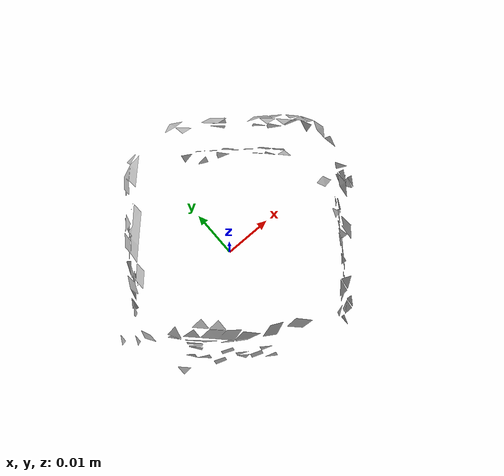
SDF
<?xml version='1.0'?>
<sdf version="1.4">
  <model name="i_lego_duplo">
    <static>false</static>
    <link name="link">
      <inertial>
        <pose>-0.0007234334344806387 -0.00308340114233082 0.025301049321047656 0.8687213328525911 -1.4762322508468193 -1.1937614547106776</pose>
        <mass>4.6561112974718803e-05</mass>
        <inertia>
          <ixx>1.0012555226524506e-08</ixx>
          <ixy>6.61313095428682e-26</ixy>
          <ixz>-7.224541031027042e-25</ixz>
          <iyy>7.658100156448116e-09</iyy>
          <iyz>-5.255721676242067e-25</iyz>
          <izz>7.520637840479157e-09</izz>
        </inertia>
      </inertial>
      <collision name="collision">
        <geometry>
          <mesh>
            <!-- Use a downsampled mesh for collisions -->
            <uri>model://073-i_lego_duplo/tsdf/textured.obj</uri>
	        </mesh>
        </geometry>
        <surface>
      </surface>
      </collision>
      <visual name="visual">
        <geometry>
          <mesh>
            <uri>model://073-i_lego_duplo/tsdf/textured.obj</uri>
	        </mesh>
        </geometry>
        <material>
          <script>
            <uri>model://073-i_lego_duplo/i_lego_duplo.material</uri>
            <name>i_lego_duplo</name>
          </script>
        </material>
      </visual>
    </link>
  </model>
</sdf>
